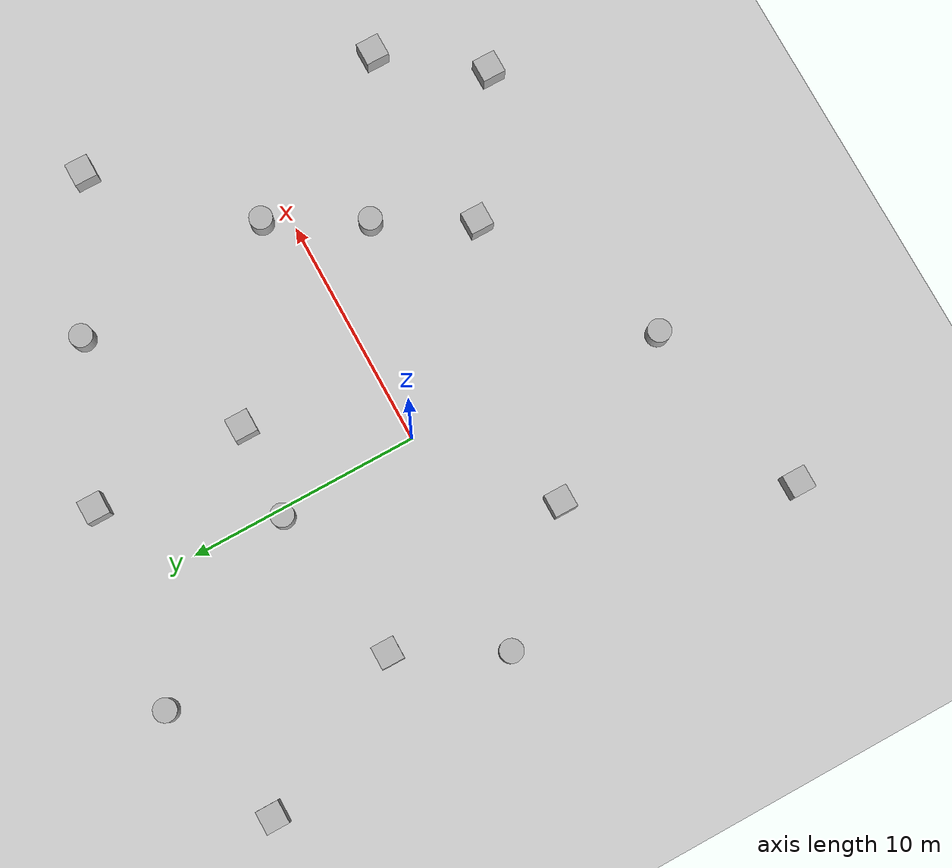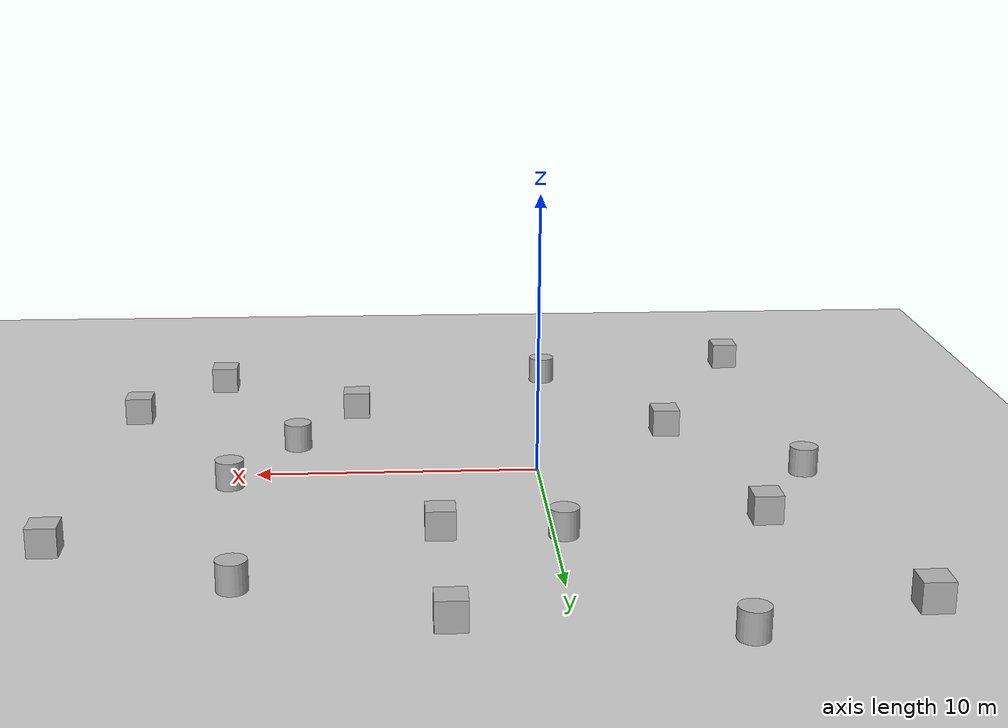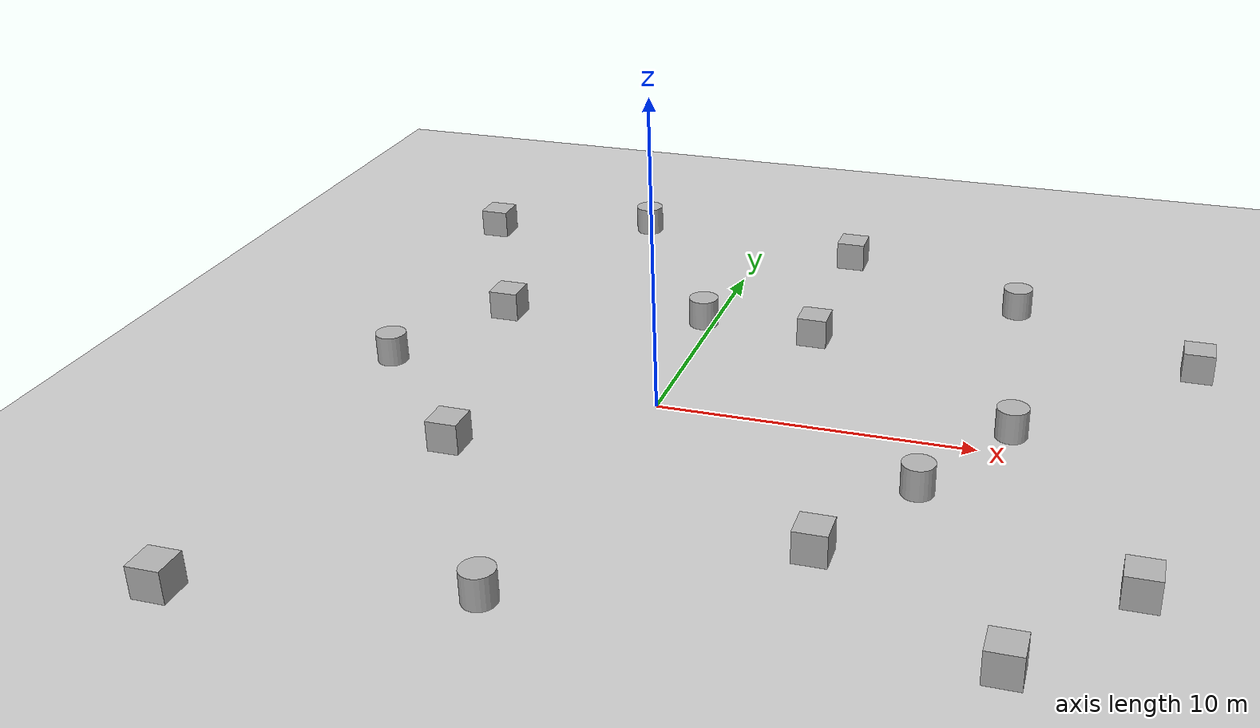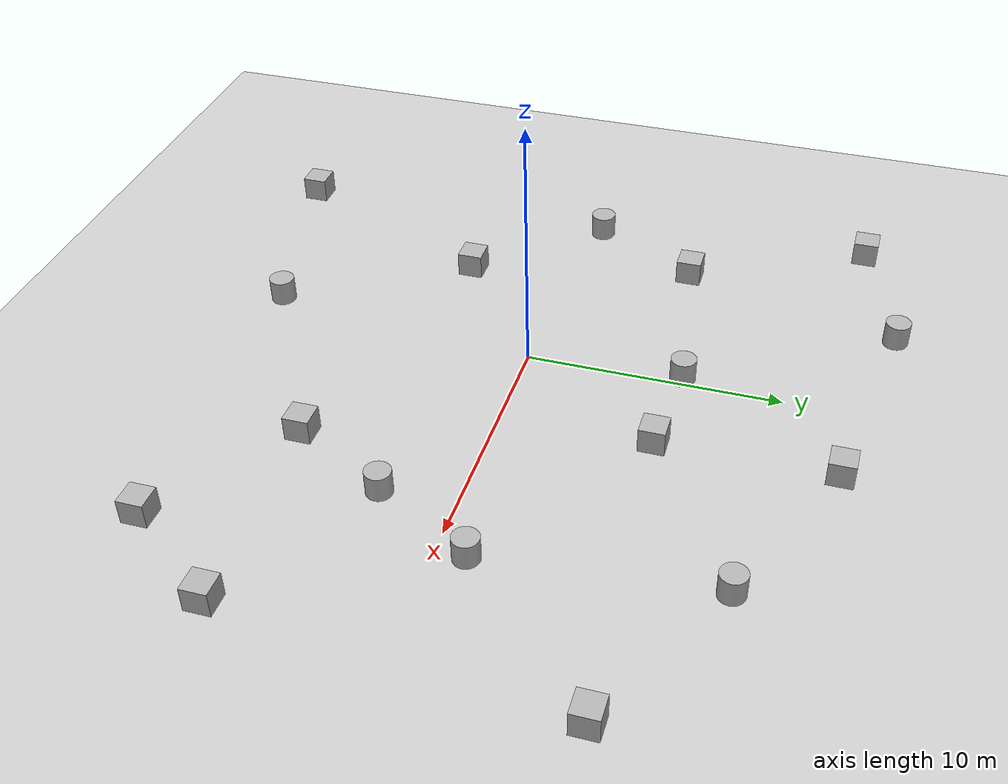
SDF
<sdf version='1.10'>
  <world name='empty_world'>
    <physics name='1ms' type='ignored'>
      <max_step_size>0.001</max_step_size>
      <real_time_factor>1</real_time_factor>
      <real_time_update_rate>1000</real_time_update_rate>
    </physics>
    <plugin name='gz::sim::systems::Physics' filename='gz-sim-physics-system'/>
    <plugin name='gz::sim::systems::UserCommands' filename='gz-sim-user-commands-system'/>
    <plugin name='gz::sim::systems::SceneBroadcaster' filename='gz-sim-scene-broadcaster-system'/>
    <plugin name='gz::sim::systems::Sensors' filename='gz-sim-sensors-system'>
      <render_engine>ogre2</render_engine>
    </plugin>
    <gravity>0 0 -9.8000000000000007</gravity>
    <magnetic_field>5.5644999999999998e-06 2.2875799999999999e-05 -4.2388400000000002e-05</magnetic_field>
    <atmosphere type='adiabatic'/>
    <scene>
      <ambient>0.400000006 0.400000006 0.400000006 1</ambient>
      <background>0.699999988 0.699999988 0.699999988 1</background>
      <shadows>true</shadows>
    </scene>
    <model name='ground_plane'>
      <static>true</static>
      <link name='link'>
        <collision name='collision'>
          <geometry>
            <plane>
              <normal>0 0 1</normal>
              <size>1 1</size>
            </plane>
          </geometry>
          <surface>
            <friction>
              <ode/>
            </friction>
            <bounce/>
            <contact/>
          </surface>
        </collision>
        <visual name='visual'>
          <geometry>
            <plane>
              <normal>0 0 1</normal>
              <size>100 100</size>
            </plane>
          </geometry>
          <material>
            <ambient>0.800000012 0.800000012 0.800000012 1</ambient>
            <diffuse>0.800000012 0.800000012 0.800000012 1</diffuse>
            <specular>0.800000012 0.800000012 0.800000012 1</specular>
          </material>
        </visual>
        <pose>0 0 0 0 0 0</pose>
        <inertial>
          <pose>0 0 0 0 0 0</pose>
          <mass>1</mass>
          <inertia>
            <ixx>1</ixx>
            <ixy>0</ixy>
            <ixz>0</ixz>
            <iyy>1</iyy>
            <iyz>0</iyz>
            <izz>1</izz>
          </inertia>
        </inertial>
        <enable_wind>false</enable_wind>
      </link>
      <pose>0 0 0 0 0 0</pose>
      <self_collide>false</self_collide>
    </model>
    <model name='box'>
      <pose>3.6636039121619994 5.832426130780588 0.5 0 0 0</pose>
      <link name='box_link'>
        <inertial>
          <inertia>
            <ixx>0.16666</ixx>
            <ixy>0</ixy>
            <ixz>0</ixz>
            <iyy>0.16666</iyy>
            <iyz>0</iyz>
            <izz>0.16666</izz>
          </inertia>
          <mass>1</mass>
          <pose>0 0 0 0 0 0</pose>
        </inertial>
        <collision name='box_collision'>
          <geometry>
            <box>
              <size>1 1 1</size>
            </box>
          </geometry>
          <surface>
            <friction>
              <ode/>
            </friction>
            <bounce/>
            <contact/>
          </surface>
        </collision>
        <visual name='box_visual'>
          <geometry>
            <box>
              <size>1 1 1</size>
            </box>
          </geometry>
          <material>
            <ambient>0.300000012 0.300000012 0.300000012 1</ambient>
            <diffuse>0.699999988 0.699999988 0.699999988 1</diffuse>
            <specular>1 1 1 1</specular>
          </material>
        </visual>
        <pose>0 0 0 0 0 0</pose>
        <enable_wind>false</enable_wind>
      </link>
      <static>false</static>
      <self_collide>false</self_collide>
    </model>
    <model name='box_1'>
      <pose>-7.1632062247554771 5.0010504941033567 0.5 0 0 0</pose>
      <link name='box_link'>
        <inertial>
          <inertia>
            <ixx>0.16666</ixx>
            <ixy>0</ixy>
            <ixz>0</ixz>
            <iyy>0.16666</iyy>
            <iyz>0</iyz>
            <izz>0.16666</izz>
          </inertia>
          <mass>1</mass>
        </inertial>
        <collision name='box_collision'>
          <geometry>
            <box>
              <size>1 1 1</size>
            </box>
          </geometry>
          <surface>
            <friction>
              <ode/>
            </friction>
            <bounce/>
            <contact/>
          </surface>
        </collision>
        <visual name='box_visual'>
          <geometry>
            <box>
              <size>1 1 1</size>
            </box>
          </geometry>
          <material>
            <ambient>0.300000012 0.300000012 0.300000012 1</ambient>
            <diffuse>0.699999988 0.699999988 0.699999988 1</diffuse>
            <specular>1 1 1 1</specular>
          </material>
        </visual>
      </link>
      <static>false</static>
      <self_collide>false</self_collide>
    </model>
    <model name='box_1_1'>
      <pose>-5.1883540313420546 -3.961164831282626 0.5 0 0 0</pose>
      <link name='box_link'>
        <inertial>
          <inertia>
            <ixx>0.16666</ixx>
            <ixy>0</ixy>
            <ixz>0</ixz>
            <iyy>0.16666</iyy>
            <iyz>0</iyz>
            <izz>0.16666</izz>
          </inertia>
          <mass>1</mass>
        </inertial>
        <collision name='box_collision'>
          <geometry>
            <box>
              <size>1 1 1</size>
            </box>
          </geometry>
          <surface>
            <friction>
              <ode/>
            </friction>
            <bounce/>
            <contact/>
          </surface>
        </collision>
        <visual name='box_visual'>
          <geometry>
            <box>
              <size>1 1 1</size>
            </box>
          </geometry>
          <material>
            <ambient>0.300000012 0.300000012 0.300000012 1</ambient>
            <diffuse>0.699999988 0.699999988 0.699999988 1</diffuse>
            <specular>1 1 1 1</specular>
          </material>
        </visual>
      </link>
      <static>false</static>
      <self_collide>false</self_collide>
    </model>
    <model name='cylinder_1'>
      <pose>-0.34136856500146173 6.0864713089794362 0.5 0 0 0</pose>
      <link name='cylinder_link'>
        <inertial>
          <inertia>
            <ixx>0.14580000000000001</ixx>
            <ixy>0</ixy>
            <ixz>0</ixz>
            <iyy>0.14580000000000001</iyy>
            <iyz>0</iyz>
            <izz>0.125</izz>
          </inertia>
          <mass>1</mass>
        </inertial>
        <collision name='cylinder_collision'>
          <geometry>
            <cylinder>
              <radius>0.5</radius>
              <length>1</length>
            </cylinder>
          </geometry>
          <surface>
            <friction>
              <ode/>
            </friction>
            <bounce/>
            <contact/>
          </surface>
        </collision>
        <visual name='cylinder_visual'>
          <geometry>
            <cylinder>
              <radius>0.5</radius>
              <length>1</length>
            </cylinder>
          </geometry>
          <material>
            <ambient>0.300000012 0.300000012 0.300000012 1</ambient>
            <diffuse>0.699999988 0.699999988 0.699999988 1</diffuse>
            <specular>1 1 1 1</specular>
          </material>
        </visual>
      </link>
      <static>false</static>
      <self_collide>false</self_collide>
    </model>
    <model name='box_0'>
      <pose>6.5832659959179534 -6.6373309830510188 0.5 0 0 0</pose>
      <link name='box_link'>
        <inertial>
          <inertia>
            <ixx>0.16666</ixx>
            <ixy>0</ixy>
            <ixz>0</ixz>
            <iyy>0.16666</iyy>
            <iyz>0</iyz>
            <izz>0.16666</izz>
          </inertia>
          <mass>1</mass>
          <pose>0 0 0 0 0 0</pose>
        </inertial>
        <collision name='box_collision'>
          <geometry>
            <box>
              <size>1 1 1</size>
            </box>
          </geometry>
          <surface>
            <friction>
              <ode/>
            </friction>
            <bounce/>
            <contact/>
          </surface>
        </collision>
        <visual name='box_visual'>
          <geometry>
            <box>
              <size>1 1 1</size>
            </box>
          </geometry>
          <material>
            <ambient>0.300000012 0.300000012 0.300000012 1</ambient>
            <diffuse>0.699999988 0.699999988 0.699999988 1</diffuse>
            <specular>1 1 1 1</specular>
          </material>
        </visual>
        <pose>0 0 0 0 0 0</pose>
        <enable_wind>false</enable_wind>
      </link>
      <static>false</static>
      <self_collide>false</self_collide>
    </model>
    <model name='cylinder'>
      <pose>-1.0629043488493206 -10.865473657754306 0.5 0 0 0</pose>
      <link name='cylinder_link'>
        <inertial>
          <inertia>
            <ixx>0.14580000000000001</ixx>
            <ixy>0</ixy>
            <ixz>0</ixz>
            <iyy>0.14580000000000001</iyy>
            <iyz>0</iyz>
            <izz>0.125</izz>
          </inertia>
          <mass>1</mass>
          <pose>0 0 0 0 0 0</pose>
        </inertial>
        <collision name='cylinder_collision'>
          <geometry>
            <cylinder>
              <radius>0.5</radius>
              <length>1</length>
            </cylinder>
          </geometry>
          <surface>
            <friction>
              <ode/>
            </friction>
            <bounce/>
            <contact/>
          </surface>
        </collision>
        <visual name='cylinder_visual'>
          <geometry>
            <cylinder>
              <radius>0.5</radius>
              <length>1</length>
            </cylinder>
          </geometry>
          <material>
            <ambient>0.300000012 0.300000012 0.300000012 1</ambient>
            <diffuse>0.699999988 0.699999988 0.699999988 1</diffuse>
            <specular>1 1 1 1</specular>
          </material>
        </visual>
        <pose>0 0 0 0 0 0</pose>
        <enable_wind>false</enable_wind>
      </link>
      <static>false</static>
      <self_collide>false</self_collide>
    </model>
    <model name='box_2'>
      <pose>-9.1033456789791956 -12.71074732235803 0.5 0 0 0</pose>
      <link name='box_link'>
        <inertial>
          <inertia>
            <ixx>0.16666</ixx>
            <ixy>0</ixy>
            <ixz>0</ixz>
            <iyy>0.16666</iyy>
            <iyz>0</iyz>
            <izz>0.16666</izz>
          </inertia>
          <mass>1</mass>
          <pose>0 0 0 0 0 0</pose>
        </inertial>
        <collision name='box_collision'>
          <geometry>
            <box>
              <size>1 1 1</size>
            </box>
          </geometry>
          <surface>
            <friction>
              <ode/>
            </friction>
            <bounce/>
            <contact/>
          </surface>
        </collision>
        <visual name='box_visual'>
          <geometry>
            <box>
              <size>1 1 1</size>
            </box>
          </geometry>
          <material>
            <ambient>0.300000012 0.300000012 0.300000012 1</ambient>
            <diffuse>0.699999988 0.699999988 0.699999988 1</diffuse>
            <specular>1 1 1 1</specular>
          </material>
        </visual>
        <pose>0 0 0 0 0 0</pose>
        <enable_wind>false</enable_wind>
      </link>
      <static>false</static>
      <self_collide>false</self_collide>
    </model>
    <model name='cylinder_0'>
      <pose>10.86952795991702 1.1209039824179459 0.5 0 0 0</pose>
      <link name='cylinder_link'>
        <inertial>
          <inertia>
            <ixx>0.14580000000000001</ixx>
            <ixy>0</ixy>
            <ixz>0</ixz>
            <iyy>0.14580000000000001</iyy>
            <iyz>0</iyz>
            <izz>0.125</izz>
          </inertia>
          <mass>1</mass>
          <pose>0 0 0 0 0 0</pose>
        </inertial>
        <collision name='cylinder_collision'>
          <geometry>
            <cylinder>
              <radius>0.5</radius>
              <length>1</length>
            </cylinder>
          </geometry>
          <surface>
            <friction>
              <ode/>
            </friction>
            <bounce/>
            <contact/>
          </surface>
        </collision>
        <visual name='cylinder_visual'>
          <geometry>
            <cylinder>
              <radius>0.5</radius>
              <length>1</length>
            </cylinder>
          </geometry>
          <material>
            <ambient>0.300000012 0.300000012 0.300000012 1</ambient>
            <diffuse>0.699999988 0.699999988 0.699999988 1</diffuse>
            <specular>1 1 1 1</specular>
          </material>
        </visual>
        <pose>0 0 0 0 0 0</pose>
        <enable_wind>false</enable_wind>
      </link>
      <static>false</static>
      <self_collide>false</self_collide>
    </model>
    <model name='box_3'>
      <pose>12.040104255028357 -10.207062853116794 0.5 0 0 0</pose>
      <link name='box_link'>
        <inertial>
          <inertia>
            <ixx>0.16666</ixx>
            <ixy>0</ixy>
            <ixz>0</ixz>
            <iyy>0.16666</iyy>
            <iyz>0</iyz>
            <izz>0.16666</izz>
          </inertia>
          <mass>1</mass>
          <pose>0 0 0 0 0 0</pose>
        </inertial>
        <collision name='box_collision'>
          <geometry>
            <box>
              <size>1 1 1</size>
            </box>
          </geometry>
          <surface>
            <friction>
              <ode/>
            </friction>
            <bounce/>
            <contact/>
          </surface>
        </collision>
        <visual name='box_visual'>
          <geometry>
            <box>
              <size>1 1 1</size>
            </box>
          </geometry>
          <material>
            <ambient>0.300000012 0.300000012 0.300000012 1</ambient>
            <diffuse>0.699999988 0.699999988 0.699999988 1</diffuse>
            <specular>1 1 1 1</specular>
          </material>
        </visual>
        <pose>0 0 0 0 0 0</pose>
        <enable_wind>false</enable_wind>
      </link>
      <static>false</static>
      <self_collide>false</self_collide>
    </model>
    <model name='cylinder_2'>
      <pose>10.032075152411183 9.8173221275830187 0.5 0 0 0</pose>
      <link name='cylinder_link'>
        <inertial>
          <inertia>
            <ixx>0.14580000000000001</ixx>
            <ixy>0</ixy>
            <ixz>0</ixz>
            <iyy>0.14580000000000001</iyy>
            <iyz>0</iyz>
            <izz>0.125</izz>
          </inertia>
          <mass>1</mass>
          <pose>0 0 0 0 0 0</pose>
        </inertial>
        <collision name='cylinder_collision'>
          <geometry>
            <cylinder>
              <radius>0.5</radius>
              <length>1</length>
            </cylinder>
          </geometry>
          <surface>
            <friction>
              <ode/>
            </friction>
            <bounce/>
            <contact/>
          </surface>
        </collision>
        <visual name='cylinder_visual'>
          <geometry>
            <cylinder>
              <radius>0.5</radius>
              <length>1</length>
            </cylinder>
          </geometry>
          <material>
            <ambient>0.300000012 0.300000012 0.300000012 1</ambient>
            <diffuse>0.699999988 0.699999988 0.699999988 1</diffuse>
            <specular>1 1 1 1</specular>
          </material>
        </visual>
        <pose>0 0 0 0 0 0</pose>
        <enable_wind>false</enable_wind>
      </link>
      <static>false</static>
      <self_collide>false</self_collide>
    </model>
    <model name='box_4'>
      <pose>3.5593249402877389 12.566730039454804 0.5 0 0 0</pose>
      <link name='box_link'>
        <inertial>
          <inertia>
            <ixx>0.16666</ixx>
            <ixy>0</ixy>
            <ixz>0</ixz>
            <iyy>0.16666</iyy>
            <iyz>0</iyz>
            <izz>0.16666</izz>
          </inertia>
          <mass>1</mass>
          <pose>0 0 0 0 0 0</pose>
        </inertial>
        <collision name='box_collision'>
          <geometry>
            <box>
              <size>1 1 1</size>
            </box>
          </geometry>
          <surface>
            <friction>
              <ode/>
            </friction>
            <bounce/>
            <contact/>
          </surface>
        </collision>
        <visual name='box_visual'>
          <geometry>
            <box>
              <size>1 1 1</size>
            </box>
          </geometry>
          <material>
            <ambient>0.300000012 0.300000012 0.300000012 1</ambient>
            <diffuse>0.699999988 0.699999988 0.699999988 1</diffuse>
            <specular>1 1 1 1</specular>
          </material>
        </visual>
        <pose>0 0 0 0 0 0</pose>
        <enable_wind>false</enable_wind>
      </link>
      <static>false</static>
      <self_collide>false</self_collide>
    </model>
    <model name='cylinder_3'>
      <pose>-9.4505828516521362 0.66262108548948362 0.5 0 0 0</pose>
      <link name='cylinder_link'>
        <inertial>
          <inertia>
            <ixx>0.14580000000000001</ixx>
            <ixy>0</ixy>
            <ixz>0</ixz>
            <iyy>0.14580000000000001</iyy>
            <iyz>0</iyz>
            <izz>0.125</izz>
          </inertia>
          <mass>1</mass>
          <pose>0 0 0 0 0 0</pose>
        </inertial>
        <collision name='cylinder_collision'>
          <geometry>
            <cylinder>
              <radius>0.5</radius>
              <length>1</length>
            </cylinder>
          </geometry>
          <surface>
            <friction>
              <ode/>
            </friction>
            <bounce/>
            <contact/>
          </surface>
        </collision>
        <visual name='cylinder_visual'>
          <geometry>
            <cylinder>
              <radius>0.5</radius>
              <length>1</length>
            </cylinder>
          </geometry>
          <material>
            <ambient>0.300000012 0.300000012 0.300000012 1</ambient>
            <diffuse>0.699999988 0.699999988 0.699999988 1</diffuse>
            <specular>1 1 1 1</specular>
          </material>
        </visual>
        <pose>0 0 0 0 0 0</pose>
        <enable_wind>false</enable_wind>
      </link>
      <static>false</static>
      <self_collide>false</self_collide>
    </model>
    <model name='cylinder_4'>
      <pose>8.694872966522599 -2.802452407788655 0.5 0 0 0</pose>
      <link name='cylinder_link'>
        <inertial>
          <inertia>
            <ixx>0.14580000000000001</ixx>
            <ixy>0</ixy>
            <ixz>0</ixz>
            <iyy>0.14580000000000001</iyy>
            <iyz>0</iyz>
            <izz>0.125</izz>
          </inertia>
          <mass>1</mass>
          <pose>0 0 0 0 0 0</pose>
        </inertial>
        <collision name='cylinder_collision'>
          <geometry>
            <cylinder>
              <radius>0.5</radius>
              <length>1</length>
            </cylinder>
          </geometry>
          <surface>
            <friction>
              <ode/>
            </friction>
            <bounce/>
            <contact/>
          </surface>
        </collision>
        <visual name='cylinder_visual'>
          <geometry>
            <cylinder>
              <radius>0.5</radius>
              <length>1</length>
            </cylinder>
          </geometry>
          <material>
            <ambient>0.300000012 0.300000012 0.300000012 1</ambient>
            <diffuse>0.699999988 0.699999988 0.699999988 1</diffuse>
            <specular>1 1 1 1</specular>
          </material>
        </visual>
        <pose>0 0 0 0 0 0</pose>
        <enable_wind>false</enable_wind>
      </link>
      <static>false</static>
      <self_collide>false</self_collide>
    </model>
    <model name='cylinder_5'>
      <pose>-4.9289819962102523 13.74703437069846 0.5 0 0 0</pose>
      <link name='cylinder_link'>
        <inertial>
          <inertia>
            <ixx>0.14580000000000001</ixx>
            <ixy>0</ixy>
            <ixz>0</ixz>
            <iyy>0.14580000000000001</iyy>
            <iyz>0</iyz>
            <izz>0.125</izz>
          </inertia>
          <mass>1</mass>
          <pose>0 0 0 0 0 0</pose>
        </inertial>
        <collision name='cylinder_collision'>
          <geometry>
            <cylinder>
              <radius>0.5</radius>
              <length>1</length>
            </cylinder>
          </geometry>
          <surface>
            <friction>
              <ode/>
            </friction>
            <bounce/>
            <contact/>
          </surface>
        </collision>
        <visual name='cylinder_visual'>
          <geometry>
            <cylinder>
              <radius>0.5</radius>
              <length>1</length>
            </cylinder>
          </geometry>
          <material>
            <ambient>0.300000012 0.300000012 0.300000012 1</ambient>
            <diffuse>0.699999988 0.699999988 0.699999988 1</diffuse>
            <specular>1 1 1 1</specular>
          </material>
        </visual>
        <pose>0 0 0 0 0 0</pose>
        <enable_wind>false</enable_wind>
      </link>
      <static>false</static>
      <self_collide>false</self_collide>
    </model>
    <model name='box_5'>
      <pose>14.999632950311071 -6.3138208313405961 0.5 0 0 0</pose>
      <link name='box_link'>
        <inertial>
          <inertia>
            <ixx>0.16666</ixx>
            <ixy>0</ixy>
            <ixz>0</ixz>
            <iyy>0.16666</iyy>
            <iyz>0</iyz>
            <izz>0.16666</izz>
          </inertia>
          <mass>1</mass>
          <pose>0 0 0 0 0 0</pose>
        </inertial>
        <collision name='box_collision'>
          <geometry>
            <box>
              <size>1 1 1</size>
            </box>
          </geometry>
          <surface>
            <friction>
              <ode/>
            </friction>
            <bounce/>
            <contact/>
          </surface>
        </collision>
        <visual name='box_visual'>
          <geometry>
            <box>
              <size>1 1 1</size>
            </box>
          </geometry>
          <material>
            <ambient>0.300000012 0.300000012 0.300000012 1</ambient>
            <diffuse>0.699999988 0.699999988 0.699999988 1</diffuse>
            <specular>1 1 1 1</specular>
          </material>
        </visual>
        <pose>0 0 0 0 0 0</pose>
        <enable_wind>false</enable_wind>
      </link>
      <static>false</static>
      <self_collide>false</self_collide>
    </model>
    <model name='box_6'>
      <pose>16.205691534055237 6.6633752103005257 0.5 0 0 0</pose>
      <link name='box_link'>
        <inertial>
          <inertia>
            <ixx>0.16666</ixx>
            <ixy>0</ixy>
            <ixz>0</ixz>
            <iyy>0.16666</iyy>
            <iyz>0</iyz>
            <izz>0.16666</izz>
          </inertia>
          <mass>1</mass>
          <pose>0 0 0 0 0 0</pose>
        </inertial>
        <collision name='box_collision'>
          <geometry>
            <box>
              <size>1 1 1</size>
            </box>
          </geometry>
          <surface>
            <friction>
              <ode/>
            </friction>
            <bounce/>
            <contact/>
          </surface>
        </collision>
        <visual name='box_visual'>
          <geometry>
            <box>
              <size>1 1 1</size>
            </box>
          </geometry>
          <material>
            <ambient>0.300000012 0.300000012 0.300000012 1</ambient>
            <diffuse>0.699999988 0.699999988 0.699999988 1</diffuse>
            <specular>1 1 1 1</specular>
          </material>
        </visual>
        <pose>0 0 0 0 0 0</pose>
        <enable_wind>false</enable_wind>
      </link>
      <static>false</static>
      <self_collide>false</self_collide>
    </model>
    <model name='box_7'>
      <pose>-10.60925714300442 11.97612284605917 0.5 0 0 0</pose>
      <link name='box_link'>
        <inertial>
          <inertia>
            <ixx>0.16666</ixx>
            <ixy>0</ixy>
            <ixz>0</ixz>
            <iyy>0.16666</iyy>
            <iyz>0</iyz>
            <izz>0.16666</izz>
          </inertia>
          <mass>1</mass>
          <pose>0 0 0 0 0 0</pose>
        </inertial>
        <collision name='box_collision'>
          <geometry>
            <box>
              <size>1 1 1</size>
            </box>
          </geometry>
          <surface>
            <friction>
              <ode/>
            </friction>
            <bounce/>
            <contact/>
          </surface>
        </collision>
        <visual name='box_visual'>
          <geometry>
            <box>
              <size>1 1 1</size>
            </box>
          </geometry>
          <material>
            <ambient>0.300000012 0.300000012 0.300000012 1</ambient>
            <diffuse>0.699999988 0.699999988 0.699999988 1</diffuse>
            <specular>1 1 1 1</specular>
          </material>
        </visual>
        <pose>0 0 0 0 0 0</pose>
        <enable_wind>false</enable_wind>
      </link>
      <static>false</static>
      <self_collide>false</self_collide>
    </model>
    <light name='sun' type='directional'>
      <pose>0 0 10 0 0 0</pose>
      <cast_shadows>true</cast_shadows>
      <intensity>1</intensity>
      <direction>-0.5 0.10000000000000001 -0.90000000000000002</direction>
      <diffuse>0.800000012 0.800000012 0.800000012 1</diffuse>
      <specular>0.200000003 0.200000003 0.200000003 1</specular>
      <attenuation>
        <range>1000</range>
        <linear>0.01</linear>
        <constant>0.90000000000000002</constant>
        <quadratic>0.001</quadratic>
      </attenuation>
      <spot>
        <inner_angle>0</inner_angle>
        <outer_angle>0</outer_angle>
        <falloff>0</falloff>
      </spot>
    </light>
  </world>
</sdf>
